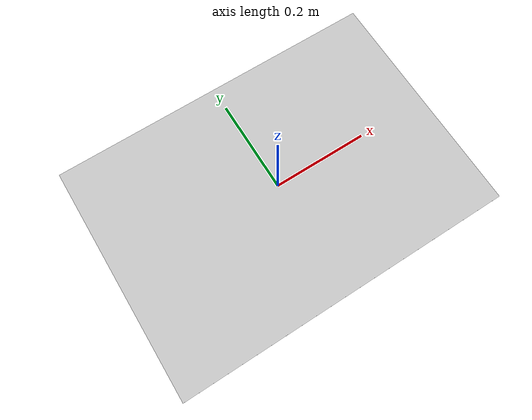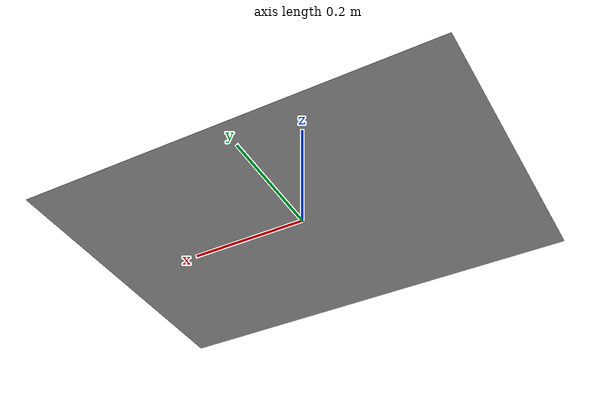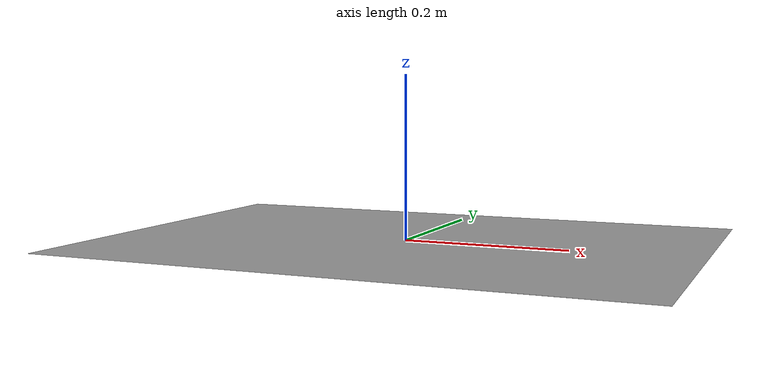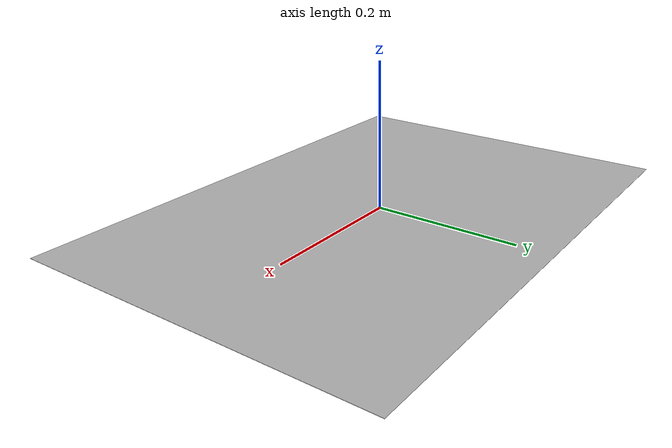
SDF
<?xml version="1.0"?>
<sdf version="1.6">
  <model name="poster">
    <static>true</static>
    <link name="robot_link">
      <collision name="body_collision">
        <geometry>
          <plane>
            <size>0.707 0.5</size>
          </plane>
        </geometry>
      </collision>

      <visual name="body_visual">
        <cast_shadows>0</cast_shadows>
        <geometry>
          <plane>
            <size>0.707 0.5</size>
          </plane>
        </geometry>

        <material>
          <script>
           <uri>model://poster/materials/scripts/</uri>
           <uri>model://poster/materials/textures/</uri>
           <name>RepeatedTexturePoster</name>
          </script>
        </material>
      </visual>

    </link>
  </model>
</sdf>
